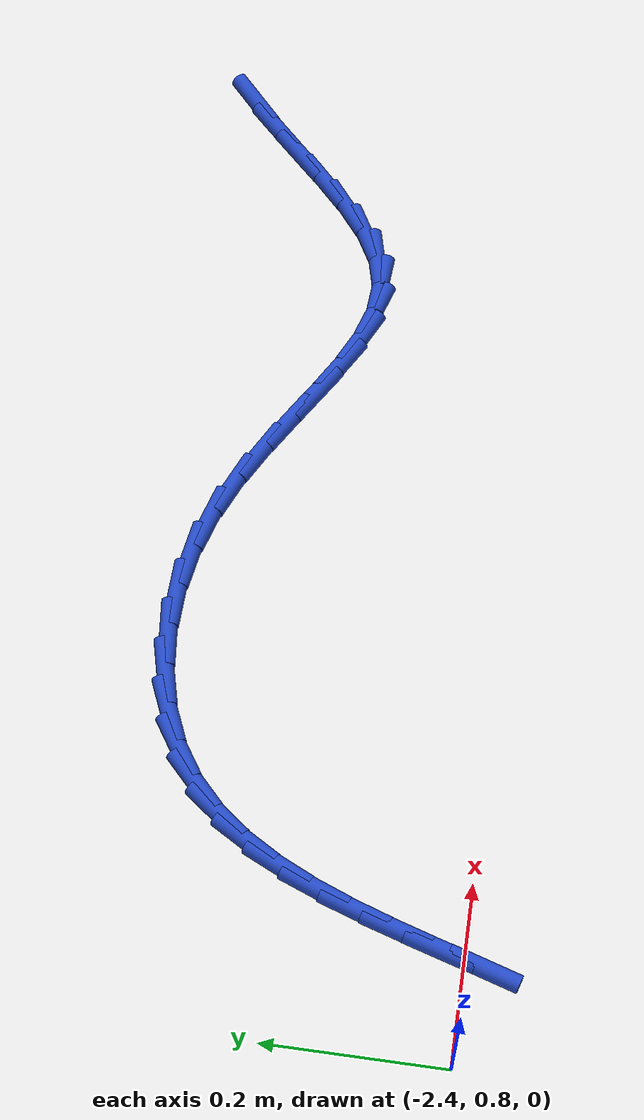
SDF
<sdf version="1.6">
 <world name="default">
  <model name="ground_plane">
   <static>1</static>
   <link name="link">
    <collision name="collision">
     <geometry><plane><normal>0 0 1</normal><size>100 100</size></plane></geometry>
     <surface><friction><ode><mu>100</mu><mu2>50</mu2></ode></friction></surface>
    </collision>
    <visual name="visual">
     <cast_shadows>0</cast_shadows>
     <geometry><plane><normal>0 0 1</normal><size>100 100</size></plane></geometry>
     <material>
      <script><uri>file://media/materials/scripts/gazebo.material</uri><name>Gazebo/WhiteGlow</name></script>
     </material>
    </visual>
   </link>
  </model>
  <model name="line">
   <link name="link_43">
    <pose>-1.2232564410881226 1.1863066112871292 0.01 0 1.57 0.7205555855280511</pose>
    <collision name="collision">
     <geometry><cylinder><radius>0.01</radius><length>0.08</length></cylinder></geometry>
    </collision>
    <visual name="visual">
     <material>
      <script><name>Gazebo/Blue</name><uri>file://media/materials/scripts/gazebo.material</uri></script>
     </material>
     <geometry><cylinder><radius>0.01</radius><length>0.08</length></cylinder></geometry>
    </visual>
   </link>
   <link name="link_44">
    <pose>-1.26086367177241 1.1532855316963693 0.01 0 1.57 0.7702737062106125</pose>
    <collision name="collision">
     <geometry><cylinder><radius>0.01</radius><length>0.08</length></cylinder></geometry>
    </collision>
    <visual name="visual">
     <material>
      <script><name>Gazebo/Blue</name><uri>file://media/materials/scripts/gazebo.material</uri></script>
     </material>
     <geometry><cylinder><radius>0.01</radius><length>0.08</length></cylinder></geometry>
    </visual>
   </link>
   <link name="link_45">
    <pose>-1.2972140230871396 1.1180184379624714 0.01 0 1.57 0.7781791566224082</pose>
    <collision name="collision">
     <geometry><cylinder><radius>0.01</radius><length>0.08</length></cylinder></geometry>
    </collision>
    <visual name="visual">
     <material>
      <script><name>Gazebo/Blue</name><uri>file://media/materials/scripts/gazebo.material</uri></script>
     </material>
     <geometry><cylinder><radius>0.01</radius><length>0.08</length></cylinder></geometry>
    </visual>
   </link>
   <link name="link_46">
    <pose>-1.3327357628464715 1.0830058945169276 0.01 0 1.57 0.7429182836827948</pose>
    <collision name="collision">
     <geometry><cylinder><radius>0.01</radius><length>0.08</length></cylinder></geometry>
    </collision>
    <visual name="visual">
     <material>
      <script><name>Gazebo/Blue</name><uri>file://media/materials/scripts/gazebo.material</uri></script>
     </material>
     <geometry><cylinder><radius>0.01</radius><length>0.08</length></cylinder></geometry>
    </visual>
   </link>
   <link name="link_47">
    <pose>-1.3678571588645654 1.0507484657912325 0.01 0 1.57 0.6550484692493531</pose>
    <collision name="collision">
     <geometry><cylinder><radius>0.01</radius><length>0.08</length></cylinder></geometry>
    </collision>
    <visual name="visual">
     <material>
      <script><name>Gazebo/Blue</name><uri>file://media/materials/scripts/gazebo.material</uri></script>
     </material>
     <geometry><cylinder><radius>0.01</radius><length>0.08</length></cylinder></geometry>
    </visual>
   </link>
   <link name="link_48">
    <pose>-1.4030064789555803 1.0237467162168776 0.01 0 1.57 0.49553609593984116</pose>
    <collision name="collision">
     <geometry><cylinder><radius>0.01</radius><length>0.08</length></cylinder></geometry>
    </collision>
    <visual name="visual">
     <material>
      <script><name>Gazebo/Blue</name><uri>file://media/materials/scripts/gazebo.material</uri></script>
     </material>
     <geometry><cylinder><radius>0.01</radius><length>0.08</length></cylinder></geometry>
    </visual>
   </link>
   <link name="link_49">
    <pose>-1.4386119909336765 1.0045012102253554 0.01 0 1.57 0.24184631108589383</pose>
    <collision name="collision">
     <geometry><cylinder><radius>0.01</radius><length>0.08</length></cylinder></geometry>
    </collision>
    <visual name="visual">
     <material>
      <script><name>Gazebo/Blue</name><uri>file://media/materials/scripts/gazebo.material</uri></script>
     </material>
     <geometry><cylinder><radius>0.01</radius><length>0.08</length></cylinder></geometry>
    </visual>
   </link>
   <link name="link_50">
    <pose>-1.4751009922724188 0.995500305186169 0.01 0 1.57 -0.05921750002147579</pose>
    <collision name="collision">
     <geometry><cylinder><radius>0.01</radius><length>0.08</length></cylinder></geometry>
    </collision>
    <visual name="visual">
     <material>
      <script><name>Gazebo/Blue</name><uri>file://media/materials/scripts/gazebo.material</uri></script>
     </material>
     <geometry><cylinder><radius>0.01</radius><length>0.08</length></cylinder></geometry>
    </visual>
   </link>
   <link name="link_51">
    <pose>-1.5127816975797825 0.9977342742598079 0.01 0 1.57 -0.28800717033451306</pose>
    <collision name="collision">
     <geometry><cylinder><radius>0.01</radius><length>0.08</length></cylinder></geometry>
    </collision>
    <visual name="visual">
     <material>
      <script><name>Gazebo/Blue</name><uri>file://media/materials/scripts/gazebo.material</uri></script>
     </material>
     <geometry><cylinder><radius>0.01</radius><length>0.08</length></cylinder></geometry>
    </visual>
   </link>
   <link name="link_52">
    <pose>-1.5517301402263604 1.0092725082142406 0.01 0 1.57 -0.4322167276771261</pose>
    <collision name="collision">
     <geometry><cylinder><radius>0.01</radius><length>0.08</length></cylinder></geometry>
    </collision>
    <visual name="visual">
     <material>
      <script><name>Gazebo/Blue</name><uri>file://media/materials/scripts/gazebo.material</uri></script>
     </material>
     <geometry><cylinder><radius>0.01</radius><length>0.08</length></cylinder></geometry>
    </visual>
   </link>
   <link name="link_53">
    <pose>-1.5919955507576256 1.0278472133797936 0.01 0 1.57 -0.5110309099938437</pose>
    <collision name="collision">
     <geometry><cylinder><radius>0.01</radius><length>0.08</length></cylinder></geometry>
    </collision>
    <visual name="visual">
     <material>
      <script><name>Gazebo/Blue</name><uri>file://media/materials/scripts/gazebo.material</uri></script>
     </material>
     <geometry><cylinder><radius>0.01</radius><length>0.08</length></cylinder></geometry>
    </visual>
   </link>
   <link name="link_54">
    <pose>-1.633627159719053 1.051190596086793 0.01 0 1.57 -0.5406935024960966</pose>
    <collision name="collision">
     <geometry><cylinder><radius>0.01</radius><length>0.08</length></cylinder></geometry>
    </collision>
    <visual name="visual">
     <material>
      <script><name>Gazebo/Blue</name><uri>file://media/materials/scripts/gazebo.material</uri></script>
     </material>
     <geometry><cylinder><radius>0.01</radius><length>0.08</length></cylinder></geometry>
    </visual>
   </link>
   <link name="link_55">
    <pose>-1.6766741976561166 1.0770348626655648 0.01 0 1.57 -0.5299531028772743</pose>
    <collision name="collision">
     <geometry><cylinder><radius>0.01</radius><length>0.08</length></cylinder></geometry>
    </collision>
    <visual name="visual">
     <material>
      <script><name>Gazebo/Blue</name><uri>file://media/materials/scripts/gazebo.material</uri></script>
     </material>
     <geometry><cylinder><radius>0.01</radius><length>0.08</length></cylinder></geometry>
    </visual>
   </link>
   <link name="link_56">
    <pose>-1.7211858951142895 1.103112219446435 0.01 0 1.57 -0.48138759618964533</pose>
    <collision name="collision">
     <geometry><cylinder><radius>0.01</radius><length>0.08</length></cylinder></geometry>
    </collision>
    <visual name="visual">
     <material>
      <script><name>Gazebo/Blue</name><uri>file://media/materials/scripts/gazebo.material</uri></script>
     </material>
     <geometry><cylinder><radius>0.01</radius><length>0.08</length></cylinder></geometry>
    </visual>
   </link>
   <link name="link_57">
    <pose>-1.7672114826390464 1.1271548727597296 0.01 0 1.57 -0.39321096665533933</pose>
    <collision name="collision">
     <geometry><cylinder><radius>0.01</radius><length>0.08</length></cylinder></geometry>
    </collision>
    <visual name="visual">
     <material>
      <script><name>Gazebo/Blue</name><uri>file://media/materials/scripts/gazebo.material</uri></script>
     </material>
     <geometry><cylinder><radius>0.01</radius><length>0.08</length></cylinder></geometry>
    </visual>
   </link>
   <link name="link_58">
    <pose>-1.8148000801979667 1.1468952607210072 0.01 0 1.57 -0.27202221343145705</pose>
    <collision name="collision">
     <geometry><cylinder><radius>0.01</radius><length>0.08</length></cylinder></geometry>
    </collision>
    <visual name="visual">
     <material>
      <script><name>Gazebo/Blue</name><uri>file://media/materials/scripts/gazebo.material</uri></script>
     </material>
     <geometry><cylinder><radius>0.01</radius><length>0.08</length></cylinder></geometry>
    </visual>
   </link>
   <link name="link_59">
    <pose>-1.8637678386730474 1.160554154070002 0.01 0 1.57 -0.14692527199367256</pose>
    <collision name="collision">
     <geometry><cylinder><radius>0.01</radius><length>0.08</length></cylinder></geometry>
    </collision>
    <visual name="visual">
     <material>
      <script><name>Gazebo/Blue</name><uri>file://media/materials/scripts/gazebo.material</uri></script>
     </material>
     <geometry><cylinder><radius>0.01</radius><length>0.08</length></cylinder></geometry>
    </visual>
   </link>
   <link name="link_60">
    <pose>-1.9132065490873316 1.1678706732875328 0.01 0 1.57 -0.0206168953785066</pose>
    <collision name="collision">
     <geometry><cylinder><radius>0.01</radius><length>0.08</length></cylinder></geometry>
    </collision>
    <visual name="visual">
     <material>
      <script><name>Gazebo/Blue</name><uri>file://media/materials/scripts/gazebo.material</uri></script>
     </material>
     <geometry><cylinder><radius>0.01</radius><length>0.08</length></cylinder></geometry>
    </visual>
   </link>
   <link name="link_61">
    <pose>-1.9620676287867778 1.1688781798088457 0.01 0 1.57 0.1110718210881586</pose>
    <collision name="collision">
     <geometry><cylinder><radius>0.01</radius><length>0.08</length></cylinder></geometry>
    </collision>
    <visual name="visual">
     <material>
      <script><name>Gazebo/Blue</name><uri>file://media/materials/scripts/gazebo.material</uri></script>
     </material>
     <geometry><cylinder><radius>0.01</radius><length>0.08</length></cylinder></geometry>
    </visual>
   </link>
   <link name="link_62">
    <pose>-2.0093024951173493 1.1636100350691867 0.01 0 1.57 0.2527870017412311</pose>
    <collision name="collision">
     <geometry><cylinder><radius>0.01</radius><length>0.08</length></cylinder></geometry>
    </collision>
    <visual name="visual">
     <material>
      <script><name>Gazebo/Blue</name><uri>file://media/materials/scripts/gazebo.material</uri></script>
     </material>
     <geometry><cylinder><radius>0.01</radius><length>0.08</length></cylinder></geometry>
    </visual>
   </link>
   <link name="link_63">
    <pose>-2.053862565425007 1.1520996005038016 0.01 0 1.57 0.40939145685200207</pose>
    <collision name="collision">
     <geometry><cylinder><radius>0.01</radius><length>0.08</length></cylinder></geometry>
    </collision>
    <visual name="visual">
     <material>
      <script><name>Gazebo/Blue</name><uri>file://media/materials/scripts/gazebo.material</uri></script>
     </material>
     <geometry><cylinder><radius>0.01</radius><length>0.08</length></cylinder></geometry>
    </visual>
   </link>
   <link name="link_64">
    <pose>-2.0946992570557117 1.1343802375479368 0.01 0 1.57 0.5846783201029622</pose>
    <collision name="collision">
     <geometry><cylinder><radius>0.01</radius><length>0.08</length></cylinder></geometry>
    </collision>
    <visual name="visual">
     <material>
      <script><name>Gazebo/Blue</name><uri>file://media/materials/scripts/gazebo.material</uri></script>
     </material>
     <geometry><cylinder><radius>0.01</radius><length>0.08</length></cylinder></geometry>
    </visual>
   </link>
   <link name="link_65">
    <pose>-2.1307860236112193 1.1104952900122271 0.01 0 1.57 0.7627107232614537</pose>
    <collision name="collision">
     <geometry><cylinder><radius>0.01</radius><length>0.08</length></cylinder></geometry>
    </collision>
    <visual name="visual">
     <material>
      <script><name>Gazebo/Blue</name><uri>file://media/materials/scripts/gazebo.material</uri></script>
     </material>
     <geometry><cylinder><radius>0.01</radius><length>0.08</length></cylinder></geometry>
    </visual>
   </link>
   <link name="link_66">
    <pose>-2.161836002167271 1.0808231766935328 0.01 0 1.57 0.9159666856900901</pose>
    <collision name="collision">
     <geometry><cylinder><radius>0.01</radius><length>0.08</length></cylinder></geometry>
    </collision>
    <visual name="visual">
     <material>
      <script><name>Gazebo/Blue</name><uri>file://media/materials/scripts/gazebo.material</uri></script>
     </material>
     <geometry><cylinder><radius>0.01</radius><length>0.08</length></cylinder></geometry>
    </visual>
   </link>
   <link name="link_67">
    <pose>-2.188460529802021 1.0461491990135392 0.01 0 1.57 1.0390309750069187</pose>
    <collision name="collision">
     <geometry><cylinder><radius>0.01</radius><length>0.08</length></cylinder></geometry>
    </collision>
    <visual name="visual">
     <material>
      <script><name>Gazebo/Blue</name><uri>file://media/materials/scripts/gazebo.material</uri></script>
     </material>
     <geometry><cylinder><radius>0.01</radius><length>0.08</length></cylinder></geometry>
    </visual>
   </link>
   <link name="link_68">
    <pose>-2.211325058319956 1.0072831722458935 0.01 0 1.57 1.1331176461598893</pose>
    <collision name="collision">
     <geometry><cylinder><radius>0.01</radius><length>0.08</length></cylinder></geometry>
    </collision>
    <visual name="visual">
     <material>
      <script><name>Gazebo/Blue</name><uri>file://media/materials/scripts/gazebo.material</uri></script>
     </material>
     <geometry><cylinder><radius>0.01</radius><length>0.08</length></cylinder></geometry>
    </visual>
   </link>
   <link name="link_69">
    <pose>-2.2310950395255578 0.9650349116642417 0.01 0 1.57 1.2016383731990814</pose>
    <collision name="collision">
     <geometry><cylinder><radius>0.01</radius><length>0.08</length></cylinder></geometry>
    </collision>
    <visual name="visual">
     <material>
      <script><name>Gazebo/Blue</name><uri>file://media/materials/scripts/gazebo.material</uri></script>
     </material>
     <geometry><cylinder><radius>0.01</radius><length>0.08</length></cylinder></geometry>
    </visual>
   </link>
   <link name="link_70">
    <pose>-2.2484359252233133 0.9202142325422318 0.01 0 1.57 1.2480900888142372</pose>
    <collision name="collision">
     <geometry><cylinder><radius>0.01</radius><length>0.08</length></cylinder></geometry>
    </collision>
    <visual name="visual">
     <material>
      <script><name>Gazebo/Blue</name><uri>file://media/materials/scripts/gazebo.material</uri></script>
     </material>
     <geometry><cylinder><radius>0.01</radius><length>0.08</length></cylinder></geometry>
    </visual>
   </link>
   <link name="link_71">
    <pose>-2.264013167217706 0.8736309501535097 0.01 0 1.57 1.2751331214356962</pose>
    <collision name="collision">
     <geometry><cylinder><radius>0.01</radius><length>0.08</length></cylinder></geometry>
    </collision>
    <visual name="visual">
     <material>
      <script><name>Gazebo/Blue</name><uri>file://media/materials/scripts/gazebo.material</uri></script>
     </material>
     <geometry><cylinder><radius>0.01</radius><length>0.08</length></cylinder></geometry>
    </visual>
   </link>
   <link name="link_72">
    <pose>-2.278492217313222 0.8260948797717232 0.01 0 1.57 1.284299760770772</pose>
    <collision name="collision">
     <geometry><cylinder><radius>0.01</radius><length>0.08</length></cylinder></geometry>
    </collision>
    <visual name="visual">
     <material>
      <script><name>Gazebo/Blue</name><uri>file://media/materials/scripts/gazebo.material</uri></script>
     </material>
     <geometry><cylinder><radius>0.01</radius><length>0.08</length></cylinder></geometry>
    </visual>
   </link>
   <link name="link_73">
    <pose>-2.292538527314345 0.7784158366705188 0.01 0 1.57 1.2759958923981525</pose>
    <collision name="collision">
     <geometry><cylinder><radius>0.01</radius><length>0.08</length></cylinder></geometry>
    </collision>
    <visual name="visual">
     <material>
      <script><name>Gazebo/Blue</name><uri>file://media/materials/scripts/gazebo.material</uri></script>
     </material>
     <geometry><cylinder><radius>0.01</radius><length>0.08</length></cylinder></geometry>
    </visual>
   </link>
  </model>
 </world>
</sdf>
